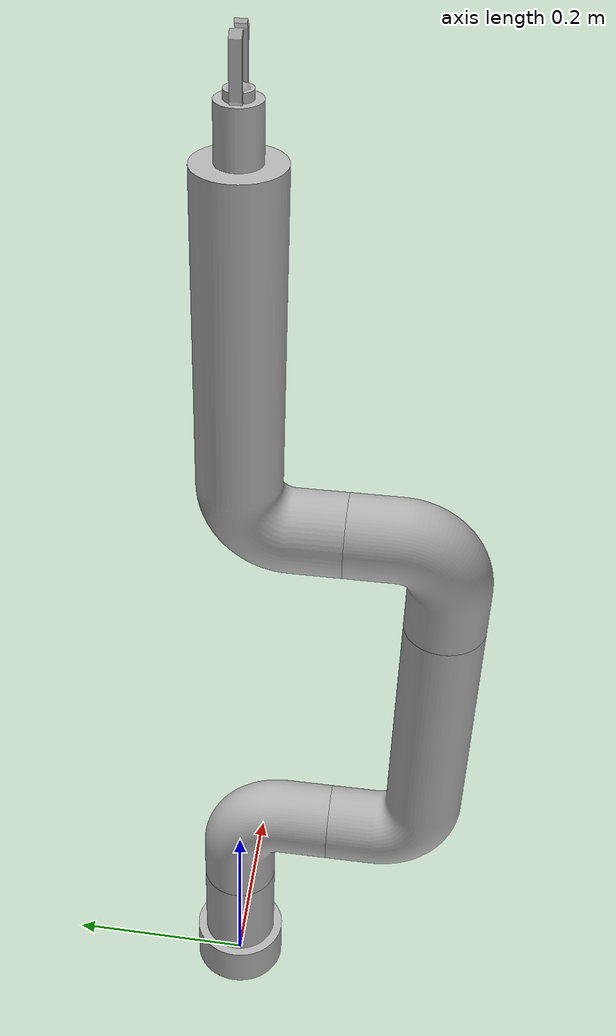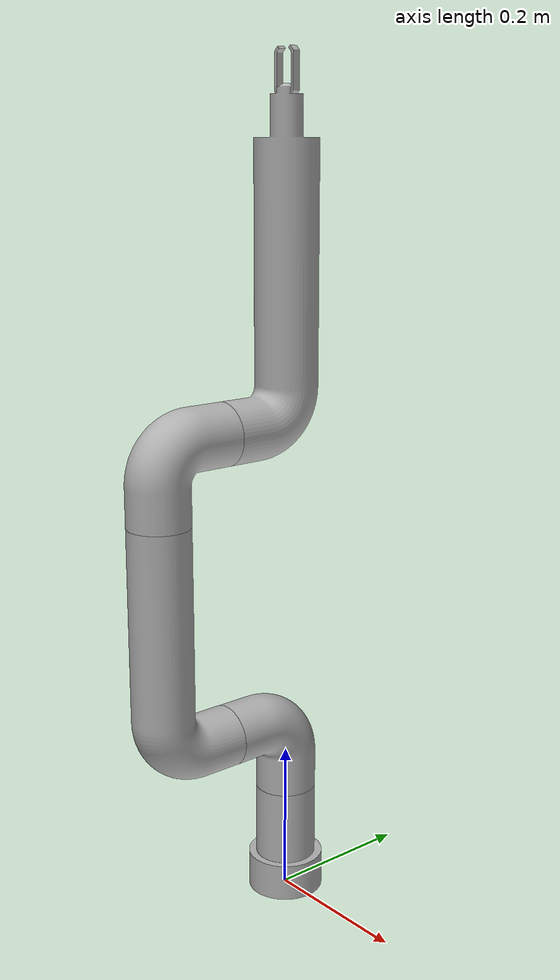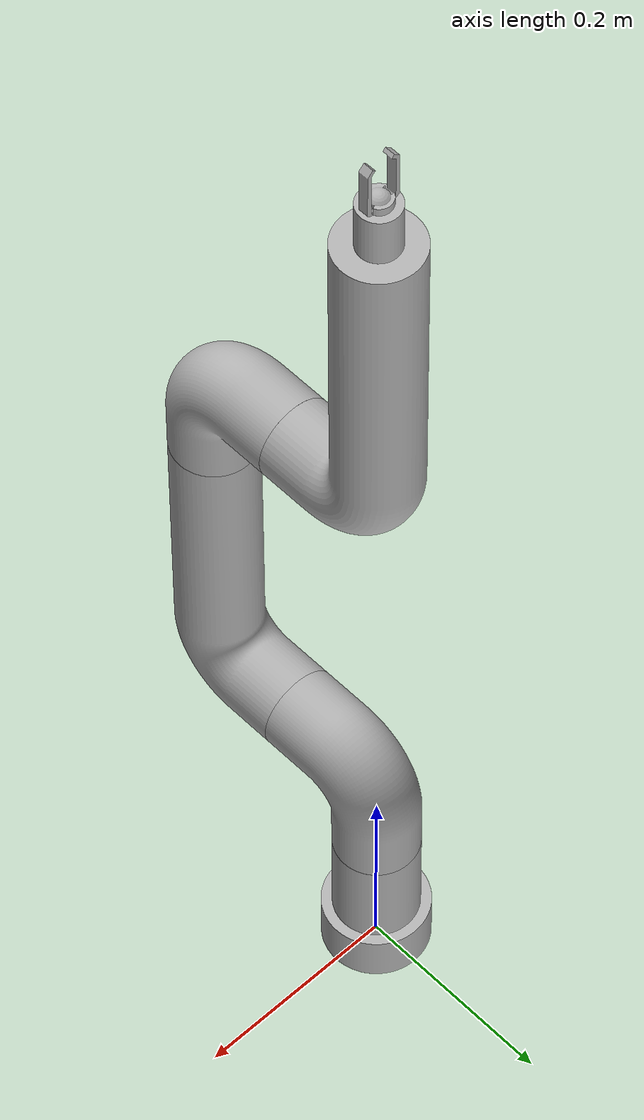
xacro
<?xml version="1.0" ?>
<robot name="RobotArm" xmlns:xacro="http://www.ros.org/wiki/xacro">

<xacro:include filename="$(find RobotArm_description)/urdf/materials.xacro" />
<xacro:include filename="$(find RobotArm_description)/urdf/RobotArm.trans" />
<xacro:include filename="$(find RobotArm_description)/urdf/RobotArm.gazebo" />
<link name="base_link">
  <inertial>
    <origin xyz="0.0 3.0473805790115944e-17 0.06710526315789474" rpy="0 0 0"/>
    <mass value="7.028528164243764"/>
    <inertia ixx="0.01717" iyy="0.01717" izz="0.00701" ixy="-0.0" iyz="-0.0" ixz="0.0"/>
  </inertial>
  <visual>
    <origin xyz="0 0 0" rpy="0 0 0"/>
    <geometry>
      <mesh filename="file://$(find RobotArm_description)/meshes/base_link.stl" scale="0.001 0.001 0.001"/>
    </geometry>
    <material name="silver"/>
  </visual>
  <collision>
    <origin xyz="0 0 0" rpy="0 0 0"/>
    <geometry>
      <mesh filename="file://$(find RobotArm_description)/meshes/base_link.stl" scale="0.001 0.001 0.001"/>
    </geometry>
  </collision>
</link>

<link name="Componente4_1">
  <inertial>
    <origin xyz="1.0134334491220965e-17 -0.026755885129270393 0.07324411487072963" rpy="0 0 0"/>
    <mass value="7.044896154850844"/>
    <inertia ixx="0.018585" iyy="0.012111" izz="0.012111" ixy="0.0" iyz="0.005089" ixz="0.0"/>
  </inertial>
  <visual>
    <origin xyz="-0.0 -0.0 -0.15" rpy="0 0 0"/>
    <geometry>
      <mesh filename="file://$(find RobotArm_description)/meshes/Componente4_1.stl" scale="0.001 0.001 0.001"/>
    </geometry>
    <material name="silver"/>
  </visual>
  <collision>
    <origin xyz="-0.0 -0.0 -0.15" rpy="0 0 0"/>
    <geometry>
      <mesh filename="file://$(find RobotArm_description)/meshes/Componente4_1.stl" scale="0.001 0.001 0.001"/>
    </geometry>
  </collision>
</link>

<link name="Componente5_1">
  <inertial>
    <origin xyz="0.0 -0.08738047991046766 0.11828872124986534" rpy="0 0 0"/>
    <mass value="14.93657690066839"/>
    <inertia ixx="0.162427" iyy="0.153287" izz="0.021088" ixy="-0.0" iyz="0.022342" ixz="-0.0"/>
  </inertial>
  <visual>
    <origin xyz="-0.0 0.1 -0.25" rpy="0 0 0"/>
    <geometry>
      <mesh filename="file://$(find RobotArm_description)/meshes/Componente5_1.stl" scale="0.001 0.001 0.001"/>
    </geometry>
    <material name="silver"/>
  </visual>
  <collision>
    <origin xyz="-0.0 0.1 -0.25" rpy="0 0 0"/>
    <geometry>
      <mesh filename="file://$(find RobotArm_description)/meshes/Componente5_1.stl" scale="0.001 0.001 0.001"/>
    </geometry>
  </collision>
</link>

<link name="Componente6_1">
  <inertial>
    <origin xyz="0.0 0.026755885129270546 0.07324411487072946" rpy="0 0 0"/>
    <mass value="7.044896154850833"/>
    <inertia ixx="0.018585" iyy="0.012111" izz="0.012111" ixy="0.0" iyz="-0.005089" ixz="-0.0"/>
  </inertial>
  <visual>
    <origin xyz="-0.0 0.2 -0.55" rpy="0 0 0"/>
    <geometry>
      <mesh filename="file://$(find RobotArm_description)/meshes/Componente6_1.stl" scale="0.001 0.001 0.001"/>
    </geometry>
    <material name="silver"/>
  </visual>
  <collision>
    <origin xyz="-0.0 0.2 -0.55" rpy="0 0 0"/>
    <geometry>
      <mesh filename="file://$(find RobotArm_description)/meshes/Componente6_1.stl" scale="0.001 0.001 0.001"/>
    </geometry>
  </collision>
</link>

<link name="Componente7_1">
  <inertial>
    <origin xyz="2.673220995321651e-07 0.08918779058748391 0.1494478643113606" rpy="0 0 0"/>
    <mass value="17.433294627889037"/>
    <inertia ixx="0.266514" iyy="0.257034" izz="0.023108" ixy="-0.0" iyz="-0.028215" ixz="-1e-06"/>
  </inertial>
  <visual>
    <origin xyz="-0.0 0.1 -0.65" rpy="0 0 0"/>
    <geometry>
      <mesh filename="file://$(find RobotArm_description)/meshes/Componente7_1.stl" scale="0.001 0.001 0.001"/>
    </geometry>
    <material name="silver"/>
  </visual>
  <collision>
    <origin xyz="-0.0 0.1 -0.65" rpy="0 0 0"/>
    <geometry>
      <mesh filename="file://$(find RobotArm_description)/meshes/Componente7_1.stl" scale="0.001 0.001 0.001"/>
    </geometry>
  </collision>
</link>

<link name="Componente8_1">
  <inertial>
    <origin xyz="-3.0163950392876806e-05 -1.1628250065204183e-15 0.026412072740170656" rpy="0 0 0"/>
    <mass value="0.03594944014624574"/>
    <inertia ixx="1e-05" iyy="1.7e-05" izz="8e-06" ixy="-0.0" iyz="-0.0" ixz="0.0"/>
  </inertial>
  <visual>
    <origin xyz="-0.0 0.0 -1.05" rpy="0 0 0"/>
    <geometry>
      <mesh filename="file://$(find RobotArm_description)/meshes/Componente8_1.stl" scale="0.001 0.001 0.001"/>
    </geometry>
    <material name="silver"/>
  </visual>
  <collision>
    <origin xyz="-0.0 0.0 -1.05" rpy="0 0 0"/>
    <geometry>
      <mesh filename="file://$(find RobotArm_description)/meshes/Componente8_1.stl" scale="0.001 0.001 0.001"/>
    </geometry>
  </collision>
</link>

<joint name="limb1_to_base_link" type="continuous">
  <origin xyz="0.0 0.0 0.15" rpy="0 0 0"/>
  <parent link="base_link"/>
  <child link="Componente4_1"/>
  <axis xyz="0.0 0.0 1.0"/>
</joint>

<joint name="limb2_to_limb1" type="revolute">
  <origin xyz="0.0 -0.1 0.1" rpy="0 0 0"/>
  <parent link="Componente4_1"/>
  <child link="Componente5_1"/>
  <axis xyz="0.0 -1.0 0.0"/>
  <limit upper="1.570796" lower="-1.570796" effort="100" velocity="100"/>
</joint>

<joint name="limb3_to_limb2" type="continuous">
  <origin xyz="0.0 -0.1 0.3" rpy="0 0 0"/>
  <parent link="Componente5_1"/>
  <child link="Componente6_1"/>
  <axis xyz="0.0 0.0 1.0"/>
</joint>

<joint name="limb4_to_limb3" type="revolute">
  <origin xyz="0.0 0.1 0.1" rpy="0 0 0"/>
  <parent link="Componente6_1"/>
  <child link="Componente7_1"/>
  <axis xyz="0.0 1.0 0.0"/>
  <limit upper="2.792527" lower="-2.792527" effort="100" velocity="100"/>
</joint>

<joint name="limb5_to_limb4" type="continuous">
  <origin xyz="0.0 0.1 0.4" rpy="0 0 0"/>
  <parent link="Componente7_1"/>
  <child link="Componente8_1"/>
  <axis xyz="0.0 0.0 1.0"/>
</joint>

</robot>

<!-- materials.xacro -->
<robot name="RobotArm" xmlns:xacro="http://www.ros.org/wiki/xacro" >

<material name="silver">
  <color rgba="0.700 0.700 0.700 1.000"/>
</material>

</robot>

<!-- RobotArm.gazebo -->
<robot name="RobotArm" xmlns:xacro="http://www.ros.org/wiki/xacro" >

<xacro:property name="body_color" value="Gazebo/Silver" />

<gazebo>
  <plugin name="control" filename="libgazebo_ros_control.so"/>
</gazebo>
<gazebo reference="base_link">
  <material>${body_color}</material>
  <mu1>0.2</mu1>
  <mu2>0.2</mu2>
  <self_collide>true</self_collide>
  <gravity>true</gravity>
</gazebo>

<gazebo reference="Componente4_1">
  <material>${body_color}</material>
  <mu1>0.2</mu1>
  <mu2>0.2</mu2>
  <self_collide>true</self_collide>
</gazebo>

<gazebo reference="Componente5_1">
  <material>${body_color}</material>
  <mu1>0.2</mu1>
  <mu2>0.2</mu2>
  <self_collide>true</self_collide>
</gazebo>

<gazebo reference="Componente6_1">
  <material>${body_color}</material>
  <mu1>0.2</mu1>
  <mu2>0.2</mu2>
  <self_collide>true</self_collide>
</gazebo>

<gazebo reference="Componente7_1">
  <material>${body_color}</material>
  <mu1>0.2</mu1>
  <mu2>0.2</mu2>
  <self_collide>true</self_collide>
</gazebo>

<gazebo reference="Componente8_1">
  <material>${body_color}</material>
  <mu1>0.2</mu1>
  <mu2>0.2</mu2>
  <self_collide>true</self_collide>
</gazebo>

</robot>
